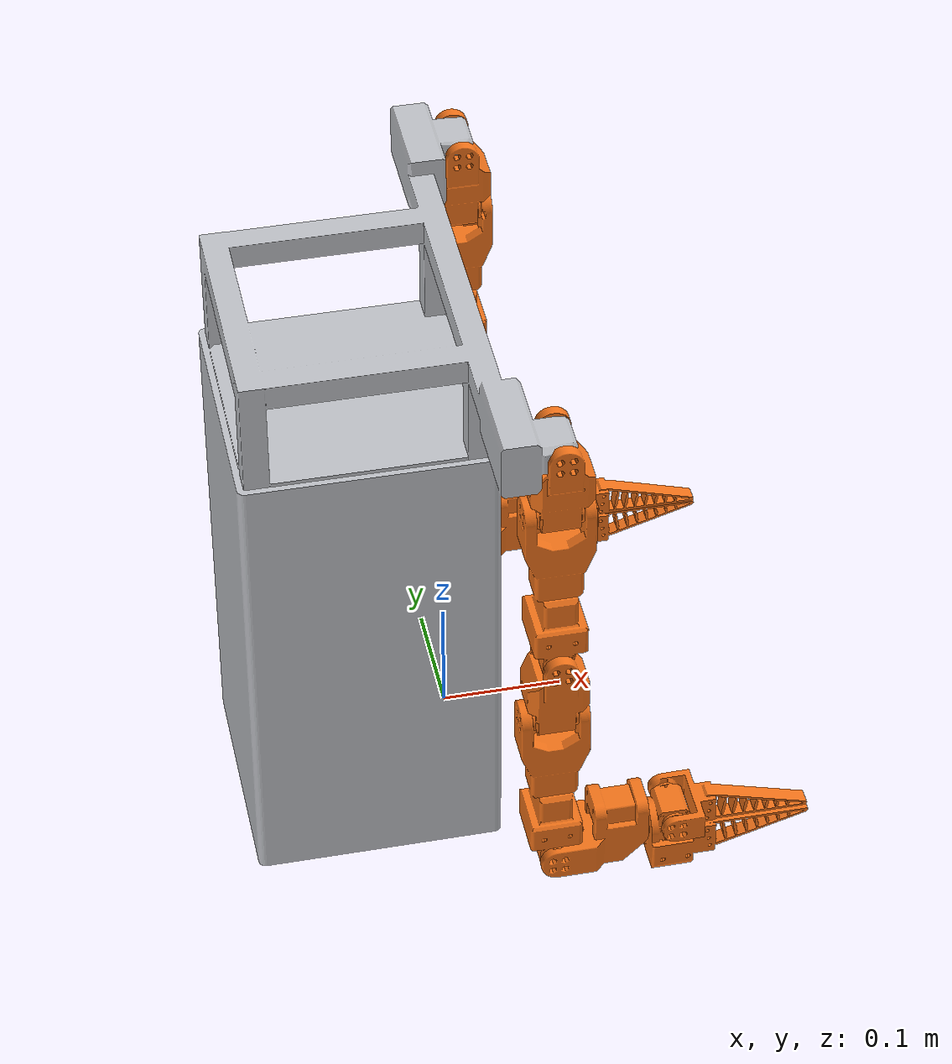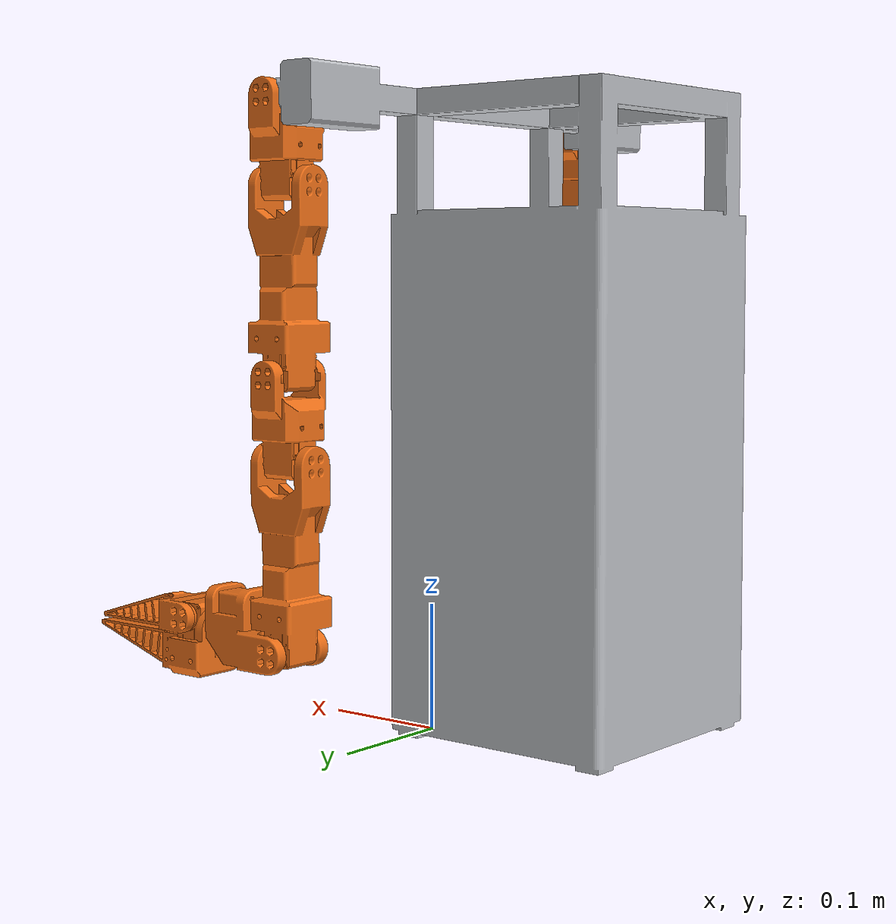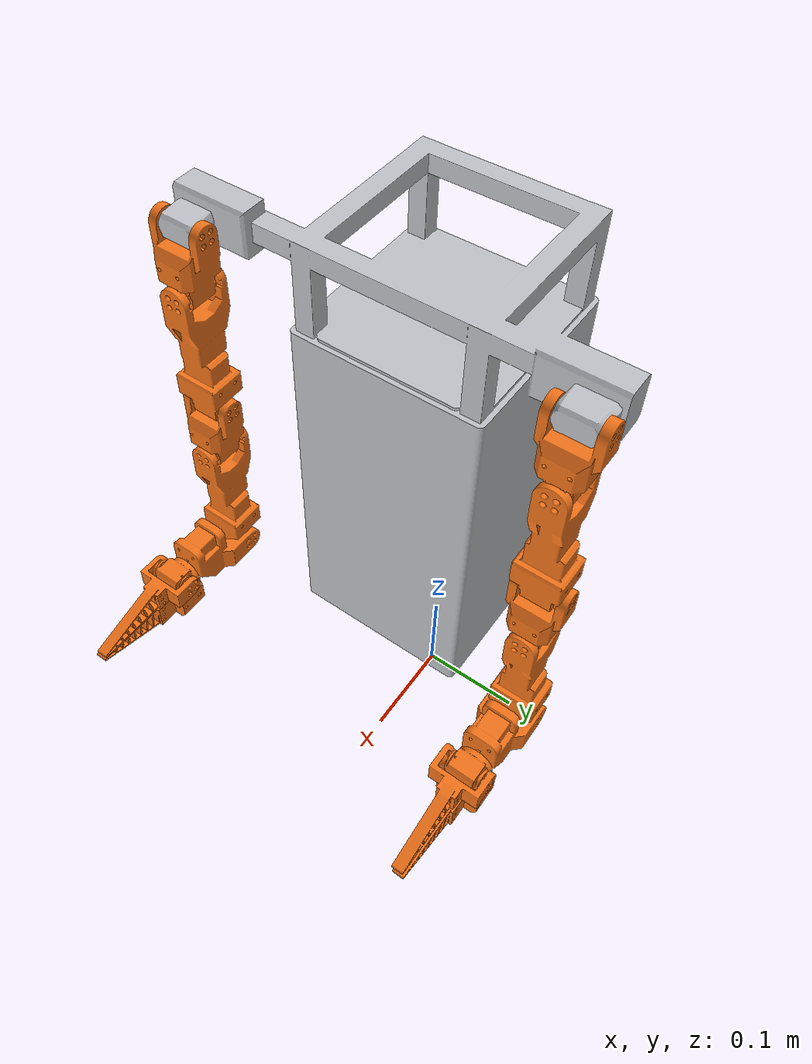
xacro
<?xml version="1.0"?>
<robot name="arm_body_v2" xmlns:xacro="http://www.ros.org/wiki/xacro">

  <!-- Links, joints, meshes, masses and inertias generated from Fusion -->
  <xacro:include filename="$(find arm_body_v2_description)/urdf/arm_body_v2_core.xacro"/>

  <!-- Self-collision (arm vs body, arm vs arm) in Gazebo. Off by default.
       Turn on with:  ros2 launch arm_body_v2_description gazebo.launch.py self_collide:=true -->
  <xacro:arg name="self_collide" default="false"/>
  <xacro:if value="$(arg self_collide)">
    <gazebo reference="body"><self_collide>true</self_collide></gazebo>
    <gazebo reference="l_link1"><self_collide>true</self_collide></gazebo>
    <gazebo reference="l_link2"><self_collide>true</self_collide></gazebo>
    <gazebo reference="l_link3"><self_collide>true</self_collide></gazebo>
    <gazebo reference="l_link4"><self_collide>true</self_collide></gazebo>
    <gazebo reference="l_link5"><self_collide>true</self_collide></gazebo>
    <gazebo reference="l_link6"><self_collide>true</self_collide></gazebo>
    <gazebo reference="l_finger"><self_collide>true</self_collide></gazebo>
    <gazebo reference="r_link1"><self_collide>true</self_collide></gazebo>
    <gazebo reference="r_link2"><self_collide>true</self_collide></gazebo>
    <gazebo reference="r_link3"><self_collide>true</self_collide></gazebo>
    <gazebo reference="r_link4"><self_collide>true</self_collide></gazebo>
    <gazebo reference="r_link5"><self_collide>true</self_collide></gazebo>
    <gazebo reference="r_link6"><self_collide>true</self_collide></gazebo>
    <gazebo reference="r_finger"><self_collide>true</self_collide></gazebo>
  </xacro:if>

  <!-- ros2_control: position-controlled joints, driven by Gazebo (gz_ros2_control) -->
  <ros2_control name="GazeboSimSystem" type="system">
    <hardware>
      <plugin>gz_ros2_control/GazeboSimSystem</plugin>
    </hardware>
    <joint name="l_joint1">
      <command_interface name="position">
        <param name="min">${l_joint1_lower}</param>
        <param name="max">${l_joint1_upper}</param>
      </command_interface>
      <state_interface name="position">
        <param name="initial_value">0.0</param>
      </state_interface>
      <state_interface name="velocity"/>
    </joint>
    <joint name="l_joint2">
      <command_interface name="position">
        <param name="min">${l_joint2_lower}</param>
        <param name="max">${l_joint2_upper}</param>
      </command_interface>
      <state_interface name="position">
        <param name="initial_value">0.0</param>
      </state_interface>
      <state_interface name="velocity"/>
    </joint>
    <joint name="l_joint3">
      <command_interface name="position">
        <param name="min">${l_joint3_lower}</param>
        <param name="max">${l_joint3_upper}</param>
      </command_interface>
      <state_interface name="position">
        <param name="initial_value">0.0</param>
      </state_interface>
      <state_interface name="velocity"/>
    </joint>
    <joint name="l_joint4">
      <command_interface name="position">
        <param name="min">${l_joint4_lower}</param>
        <param name="max">${l_joint4_upper}</param>
      </command_interface>
      <state_interface name="position">
        <param name="initial_value">0.0</param>
      </state_interface>
      <state_interface name="velocity"/>
    </joint>
    <joint name="l_joint5">
      <command_interface name="position">
        <param name="min">${l_joint5_lower}</param>
        <param name="max">${l_joint5_upper}</param>
      </command_interface>
      <state_interface name="position">
        <param name="initial_value">0.0</param>
      </state_interface>
      <state_interface name="velocity"/>
    </joint>
    <joint name="l_joint6">
      <command_interface name="position">
        <param name="min">${l_joint6_lower}</param>
        <param name="max">${l_joint6_upper}</param>
      </command_interface>
      <state_interface name="position">
        <param name="initial_value">0.0</param>
      </state_interface>
      <state_interface name="velocity"/>
    </joint>
    <joint name="l_joint7">
      <command_interface name="position">
        <param name="min">${l_joint7_lower}</param>
        <param name="max">${l_joint7_upper}</param>
      </command_interface>
      <state_interface name="position">
        <param name="initial_value">0.0</param>
      </state_interface>
      <state_interface name="velocity"/>
    </joint>
    <joint name="r_joint1">
      <command_interface name="position">
        <param name="min">${r_joint1_lower}</param>
        <param name="max">${r_joint1_upper}</param>
      </command_interface>
      <state_interface name="position">
        <param name="initial_value">0.0</param>
      </state_interface>
      <state_interface name="velocity"/>
    </joint>
    <joint name="r_joint2">
      <command_interface name="position">
        <param name="min">${r_joint2_lower}</param>
        <param name="max">${r_joint2_upper}</param>
      </command_interface>
      <state_interface name="position">
        <param name="initial_value">0.0</param>
      </state_interface>
      <state_interface name="velocity"/>
    </joint>
    <joint name="r_joint3">
      <command_interface name="position">
        <param name="min">${r_joint3_lower}</param>
        <param name="max">${r_joint3_upper}</param>
      </command_interface>
      <state_interface name="position">
        <param name="initial_value">0.0</param>
      </state_interface>
      <state_interface name="velocity"/>
    </joint>
    <joint name="r_joint4">
      <command_interface name="position">
        <param name="min">${r_joint4_lower}</param>
        <param name="max">${r_joint4_upper}</param>
      </command_interface>
      <state_interface name="position">
        <param name="initial_value">0.0</param>
      </state_interface>
      <state_interface name="velocity"/>
    </joint>
    <joint name="r_joint5">
      <command_interface name="position">
        <param name="min">${r_joint5_lower}</param>
        <param name="max">${r_joint5_upper}</param>
      </command_interface>
      <state_interface name="position">
        <param name="initial_value">0.0</param>
      </state_interface>
      <state_interface name="velocity"/>
    </joint>
    <joint name="r_joint6">
      <command_interface name="position">
        <param name="min">${r_joint6_lower}</param>
        <param name="max">${r_joint6_upper}</param>
      </command_interface>
      <state_interface name="position">
        <param name="initial_value">0.0</param>
      </state_interface>
      <state_interface name="velocity"/>
    </joint>
    <joint name="r_joint7">
      <command_interface name="position">
        <param name="min">${r_joint7_lower}</param>
        <param name="max">${r_joint7_upper}</param>
      </command_interface>
      <state_interface name="position">
        <param name="initial_value">0.0</param>
      </state_interface>
      <state_interface name="velocity"/>
    </joint>
  </ros2_control>

  <!-- Gazebo Harmonic: load the ros2_control plugin with our controller config -->
  <gazebo>
    <plugin filename="libgz_ros2_control-system.so" name="gz_ros2_control::GazeboSimROS2ControlPlugin">
      <parameters>$(find arm_body_v2_description)/config/controllers.yaml</parameters>
    </plugin>
  </gazebo>

</robot>

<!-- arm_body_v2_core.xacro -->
<robot name="arm_body_v2" xmlns:xacro="http://www.ros.org/wiki/xacro">
  <!-- Generated from Fusion design "Body + Arm v8". Units: metres, kilograms. -->
  <!-- Masses: printed parts PETG 15% infill (0.33 x 1.27 g/cm3), 2020 extrusions aluminium 6061,
       servos 74.5 g (STS3250). Inertias from Fusion geometry, rescaled to these materials. -->

  <!-- Joint limits (rad). Fusion has no limits set, so these default to the full servo travel
       around the rest pose. Tighten them to the real mechanical range. -->
  <xacro:property name="l_joint1_lower" value="-3.1416"/>
  <xacro:property name="l_joint1_upper" value="3.1416"/>
  <xacro:property name="l_joint2_lower" value="-3.1416"/>
  <xacro:property name="l_joint2_upper" value="3.1416"/>
  <xacro:property name="l_joint3_lower" value="-3.1416"/>
  <xacro:property name="l_joint3_upper" value="3.1416"/>
  <xacro:property name="l_joint4_lower" value="-3.1416"/>
  <xacro:property name="l_joint4_upper" value="3.1416"/>
  <xacro:property name="l_joint5_lower" value="-3.1416"/>
  <xacro:property name="l_joint5_upper" value="3.1416"/>
  <xacro:property name="l_joint6_lower" value="-3.1416"/>
  <xacro:property name="l_joint6_upper" value="3.1416"/>
  <xacro:property name="l_joint7_lower" value="-3.1416"/>
  <xacro:property name="l_joint7_upper" value="3.1416"/>
  <xacro:property name="r_joint1_lower" value="-3.1416"/>
  <xacro:property name="r_joint1_upper" value="3.1416"/>
  <xacro:property name="r_joint2_lower" value="-3.1416"/>
  <xacro:property name="r_joint2_upper" value="3.1416"/>
  <xacro:property name="r_joint3_lower" value="-3.1416"/>
  <xacro:property name="r_joint3_upper" value="3.1416"/>
  <xacro:property name="r_joint4_lower" value="-3.1416"/>
  <xacro:property name="r_joint4_upper" value="3.1416"/>
  <xacro:property name="r_joint5_lower" value="-3.1416"/>
  <xacro:property name="r_joint5_upper" value="3.1416"/>
  <xacro:property name="r_joint6_lower" value="-3.1416"/>
  <xacro:property name="r_joint6_upper" value="3.1416"/>
  <xacro:property name="r_joint7_lower" value="-3.1416"/>
  <xacro:property name="r_joint7_upper" value="3.1416"/>
  <xacro:property name="servo_effort" value="4.9"/>    <!-- STS3250 stall torque, N*m -->
  <xacro:property name="servo_velocity" value="7.85"/> <!-- rad/s -->

  <material name="petg_orange"><color rgba="0.95 0.45 0.10 1"/></material>
  <material name="aluminium"><color rgba="0.75 0.76 0.78 1"/></material>
  <link name="world"/>
  <joint name="world_to_body" type="fixed">
    <parent link="world"/>
    <child link="body"/>
    <origin xyz="0 0 -0.229871" rpy="0 0 0"/>
  </joint>
  <link name="body">
    <inertial>
      <origin xyz="-0.065542 -0.065485 0.528216" rpy="0 0 0"/>
      <mass value="1.969296"/>
      <inertia ixx="6.9145e-02" ixy="-2.1153e-05" ixz="-3.7645e-03" iyy="6.2288e-02" iyz="-3.2409e-05" izz="3.1000e-02"/>
    </inertial>
    <visual>
      <origin xyz="0 0 0" rpy="0 0 0"/>
      <geometry><mesh filename="package://arm_body_v2_description/meshes/body.stl" scale="0.001 0.001 0.001"/></geometry>
      <material name="aluminium"/>
    </visual>
    <collision>
      <origin xyz="0 0 0" rpy="0 0 0"/>
      <geometry><mesh filename="package://arm_body_v2_description/meshes/collision/body.stl" scale="0.001 0.001 0.001"/></geometry>
    </collision>
  </link>
  <link name="l_link1">
    <inertial>
      <origin xyz="-0.000081 -0.017299 -0.045926" rpy="0 0 0"/>
      <mass value="0.096732"/>
      <inertia ixx="3.9581e-05" ixy="8.2644e-10" ixz="-4.7817e-07" iyy="4.0490e-05" iyz="4.1812e-08" izz="1.9835e-05"/>
    </inertial>
    <visual>
      <origin xyz="-0.0382 0.234279 -0.719471" rpy="0 0 0"/>
      <geometry><mesh filename="package://arm_body_v2_description/meshes/l_link1.stl" scale="0.001 0.001 0.001"/></geometry>
      <material name="petg_orange"/>
    </visual>
    <collision>
      <origin xyz="-0.0382 0.234279 -0.719471" rpy="0 0 0"/>
      <geometry><mesh filename="package://arm_body_v2_description/meshes/collision/l_link1.stl" scale="0.001 0.001 0.001"/></geometry>
    </collision>
  </link>
  <link name="l_link2">
    <inertial>
      <origin xyz="0.016458 -0.000128 -0.103893" rpy="0 0 0"/>
      <mass value="0.117687"/>
      <inertia ixx="2.1309e-04" ixy="-7.7217e-09" ixz="1.6375e-07" iyy="2.1412e-04" iyz="-5.5021e-07" izz="2.6510e-05"/>
    </inertial>
    <visual>
      <origin xyz="-0.0207 0.251579 -0.654271" rpy="0 0 0"/>
      <geometry><mesh filename="package://arm_body_v2_description/meshes/l_link2.stl" scale="0.001 0.001 0.001"/></geometry>
      <material name="petg_orange"/>
    </visual>
    <collision>
      <origin xyz="-0.0207 0.251579 -0.654271" rpy="0 0 0"/>
      <geometry><mesh filename="package://arm_body_v2_description/meshes/collision/l_link2.stl" scale="0.001 0.001 0.001"/></geometry>
    </collision>
  </link>
  <link name="l_link3">
    <inertial>
      <origin xyz="-0.000466 0.016619 -0.045924" rpy="0 0 0"/>
      <mass value="0.096732"/>
      <inertia ixx="3.9452e-05" ixy="-2.8700e-09" ixz="-7.1137e-07" iyy="4.0408e-05" iyz="-3.1641e-11" izz="1.9824e-05"/>
    </inertial>
    <visual>
      <origin xyz="-0.03715 0.2691 -0.513071" rpy="0 0 0"/>
      <geometry><mesh filename="package://arm_body_v2_description/meshes/l_link3.stl" scale="0.001 0.001 0.001"/></geometry>
      <material name="petg_orange"/>
    </visual>
    <collision>
      <origin xyz="-0.03715 0.2691 -0.513071" rpy="0 0 0"/>
      <geometry><mesh filename="package://arm_body_v2_description/meshes/collision/l_link3.stl" scale="0.001 0.001 0.001"/></geometry>
    </collision>
  </link>
  <link name="l_link4">
    <inertial>
      <origin xyz="-0.016661 0.00042 -0.103842" rpy="0 0 0"/>
      <mass value="0.117687"/>
      <inertia ixx="2.1318e-04" ixy="-2.8284e-08" ixz="2.9890e-06" iyy="2.1426e-04" iyz="1.2039e-06" izz="2.6576e-05"/>
    </inertial>
    <visual>
      <origin xyz="-0.05325 0.252475 -0.447872" rpy="0 0 0"/>
      <geometry><mesh filename="package://arm_body_v2_description/meshes/l_link4.stl" scale="0.001 0.001 0.001"/></geometry>
      <material name="petg_orange"/>
    </visual>
    <collision>
      <origin xyz="-0.05325 0.252475 -0.447872" rpy="0 0 0"/>
      <geometry><mesh filename="package://arm_body_v2_description/meshes/collision/l_link4.stl" scale="0.001 0.001 0.001"/></geometry>
    </collision>
  </link>
  <link name="l_link5">
    <inertial>
      <origin xyz="0.048189 -0.017124 0.015363" rpy="0 0 0"/>
      <mass value="0.098560"/>
      <inertia ixx="3.0343e-05" ixy="2.2154e-07" ixz="-6.9574e-06" iyy="4.4400e-05" iyz="6.0241e-08" izz="3.5331e-05"/>
    </inertial>
    <visual>
      <origin xyz="-0.03715 0.235 -0.306724" rpy="0 0 0"/>
      <geometry><mesh filename="package://arm_body_v2_description/meshes/l_link5.stl" scale="0.001 0.001 0.001"/></geometry>
      <material name="petg_orange"/>
    </visual>
    <collision>
      <origin xyz="-0.03715 0.235 -0.306724" rpy="0 0 0"/>
      <geometry><mesh filename="package://arm_body_v2_description/meshes/collision/l_link5.stl" scale="0.001 0.001 0.001"/></geometry>
    </collision>
  </link>
  <link name="l_link6">
    <inertial>
      <origin xyz="0.026941 0.000093 -0.003054" rpy="0 0 0"/>
      <mass value="0.093425"/>
      <inertia ixx="2.8329e-05" ixy="2.3020e-07" ixz="2.9458e-06" iyy="3.9335e-05" iyz="-2.2407e-07" izz="2.9675e-05"/>
    </inertial>
    <visual>
      <origin xyz="-0.1072 0.252199 -0.311674" rpy="0 0 0"/>
      <geometry><mesh filename="package://arm_body_v2_description/meshes/l_link6.stl" scale="0.001 0.001 0.001"/></geometry>
      <material name="petg_orange"/>
    </visual>
    <collision>
      <origin xyz="-0.1072 0.252199 -0.311674" rpy="0 0 0"/>
      <geometry><mesh filename="package://arm_body_v2_description/meshes/collision/l_link6.stl" scale="0.001 0.001 0.001"/></geometry>
    </collision>
  </link>
  <link name="l_finger">
    <inertial>
      <origin xyz="0.028467 0.017653 -0.001186" rpy="0 0 0"/>
      <mass value="0.010447"/>
      <inertia ixx="2.9184e-06" ixy="-1.4031e-08" ixz="6.8506e-07" iyy="7.3735e-06" iyz="2.0008e-09" izz="9.1900e-06"/>
    </inertial>
    <visual>
      <origin xyz="-0.131925 0.269099 -0.324674" rpy="0 0 0"/>
      <geometry><mesh filename="package://arm_body_v2_description/meshes/l_finger.stl" scale="0.001 0.001 0.001"/></geometry>
      <material name="petg_orange"/>
    </visual>
    <collision>
      <origin xyz="-0.131925 0.269099 -0.324674" rpy="0 0 0"/>
      <geometry><mesh filename="package://arm_body_v2_description/meshes/collision/l_finger.stl" scale="0.001 0.001 0.001"/></geometry>
    </collision>
  </link>
  <link name="r_link1">
    <inertial>
      <origin xyz="-0.00008 0.0173 -0.045923" rpy="0 0 0"/>
      <mass value="0.096732"/>
      <inertia ixx="3.9367e-05" ixy="1.2795e-09" ixz="-4.6651e-07" iyy="4.0283e-05" iyz="-4.5634e-09" izz="1.9828e-05"/>
    </inertial>
    <visual>
      <origin xyz="-0.0382 -0.103821 -0.719471" rpy="0 0 0"/>
      <geometry><mesh filename="package://arm_body_v2_description/meshes/r_link1.stl" scale="0.001 0.001 0.001"/></geometry>
      <material name="petg_orange"/>
    </visual>
    <collision>
      <origin xyz="-0.0382 -0.103821 -0.719471" rpy="0 0 0"/>
      <geometry><mesh filename="package://arm_body_v2_description/meshes/collision/r_link1.stl" scale="0.001 0.001 0.001"/></geometry>
    </collision>
  </link>
  <link name="r_link2">
    <inertial>
      <origin xyz="0.016458 0.000128 -0.103893" rpy="0 0 0"/>
      <mass value="0.117687"/>
      <inertia ixx="2.1311e-04" ixy="5.5031e-09" ixz="1.6373e-07" iyy="2.1412e-04" iyz="5.1736e-07" izz="2.6533e-05"/>
    </inertial>
    <visual>
      <origin xyz="-0.0207 -0.12112 -0.654271" rpy="0 0 0"/>
      <geometry><mesh filename="package://arm_body_v2_description/meshes/r_link2.stl" scale="0.001 0.001 0.001"/></geometry>
      <material name="petg_orange"/>
    </visual>
    <collision>
      <origin xyz="-0.0207 -0.12112 -0.654271" rpy="0 0 0"/>
      <geometry><mesh filename="package://arm_body_v2_description/meshes/collision/r_link2.stl" scale="0.001 0.001 0.001"/></geometry>
    </collision>
  </link>
  <link name="r_link3">
    <inertial>
      <origin xyz="-0.000466 0.01748 -0.045924" rpy="0 0 0"/>
      <mass value="0.096732"/>
      <inertia ixx="3.9474e-05" ixy="6.8019e-10" ixz="-7.1137e-07" iyy="4.0408e-05" iyz="-2.7854e-08" izz="1.9847e-05"/>
    </inertial>
    <visual>
      <origin xyz="-0.03715 -0.104542 -0.513071" rpy="0 0 0"/>
      <geometry><mesh filename="package://arm_body_v2_description/meshes/r_link3.stl" scale="0.001 0.001 0.001"/></geometry>
      <material name="petg_orange"/>
    </visual>
    <collision>
      <origin xyz="-0.03715 -0.104542 -0.513071" rpy="0 0 0"/>
      <geometry><mesh filename="package://arm_body_v2_description/meshes/collision/r_link3.stl" scale="0.001 0.001 0.001"/></geometry>
    </collision>
  </link>
  <link name="r_link4">
    <inertial>
      <origin xyz="-0.016661 -0.00042 -0.103842" rpy="0 0 0"/>
      <mass value="0.117687"/>
      <inertia ixx="2.1320e-04" ixy="2.6099e-08" ixz="2.9890e-06" iyy="2.1426e-04" iyz="-1.2244e-06" izz="2.6598e-05"/>
    </inertial>
    <visual>
      <origin xyz="-0.05325 -0.122016 -0.447872" rpy="0 0 0"/>
      <geometry><mesh filename="package://arm_body_v2_description/meshes/r_link4.stl" scale="0.001 0.001 0.001"/></geometry>
      <material name="petg_orange"/>
    </visual>
    <collision>
      <origin xyz="-0.05325 -0.122016 -0.447872" rpy="0 0 0"/>
      <geometry><mesh filename="package://arm_body_v2_description/meshes/collision/r_link4.stl" scale="0.001 0.001 0.001"/></geometry>
    </collision>
  </link>
  <link name="r_link5">
    <inertial>
      <origin xyz="0.048189 0.017123 0.015363" rpy="0 0 0"/>
      <mass value="0.098560"/>
      <inertia ixx="3.0366e-05" ixy="-2.2652e-07" ixz="-6.9576e-06" iyy="4.4400e-05" iyz="-7.9431e-08" izz="3.5354e-05"/>
    </inertial>
    <visual>
      <origin xyz="-0.03715 -0.104542 -0.306724" rpy="0 0 0"/>
      <geometry><mesh filename="package://arm_body_v2_description/meshes/r_link5.stl" scale="0.001 0.001 0.001"/></geometry>
      <material name="petg_orange"/>
    </visual>
    <collision>
      <origin xyz="-0.03715 -0.104542 -0.306724" rpy="0 0 0"/>
      <geometry><mesh filename="package://arm_body_v2_description/meshes/collision/r_link5.stl" scale="0.001 0.001 0.001"/></geometry>
    </collision>
  </link>
  <link name="r_link6">
    <inertial>
      <origin xyz="0.026941 -0.000093 -0.003054" rpy="0 0 0"/>
      <mass value="0.093425"/>
      <inertia ixx="2.8352e-05" ixy="-2.3820e-07" ixz="2.9458e-06" iyy="3.9335e-05" iyz="2.0565e-07" izz="2.9697e-05"/>
    </inertial>
    <visual>
      <origin xyz="-0.1072 -0.12174 -0.311674" rpy="0 0 0"/>
      <geometry><mesh filename="package://arm_body_v2_description/meshes/r_link6.stl" scale="0.001 0.001 0.001"/></geometry>
      <material name="petg_orange"/>
    </visual>
    <collision>
      <origin xyz="-0.1072 -0.12174 -0.311674" rpy="0 0 0"/>
      <geometry><mesh filename="package://arm_body_v2_description/meshes/collision/r_link6.stl" scale="0.001 0.001 0.001"/></geometry>
    </collision>
  </link>
  <link name="r_finger">
    <inertial>
      <origin xyz="0.028467 -0.017653 -0.001186" rpy="0 0 0"/>
      <mass value="0.010447"/>
      <inertia ixx="2.9184e-06" ixy="1.4030e-08" ixz="6.8506e-07" iyy="7.3735e-06" iyz="-2.0012e-09" izz="9.1900e-06"/>
    </inertial>
    <visual>
      <origin xyz="-0.131925 -0.13864 -0.324674" rpy="0 0 0"/>
      <geometry><mesh filename="package://arm_body_v2_description/meshes/r_finger.stl" scale="0.001 0.001 0.001"/></geometry>
      <material name="petg_orange"/>
    </visual>
    <collision>
      <origin xyz="-0.131925 -0.13864 -0.324674" rpy="0 0 0"/>
      <geometry><mesh filename="package://arm_body_v2_description/meshes/collision/r_finger.stl" scale="0.001 0.001 0.001"/></geometry>
    </collision>
  </link>
  <joint name="l_joint1" type="revolute">
    <parent link="body"/>
    <child link="l_link1"/>
    <origin xyz="0.0382 -0.234279 0.719471" rpy="0 0 0"/>
    <axis xyz="0 1 0"/>
    <limit lower="${l_joint1_lower}" upper="${l_joint1_upper}" effort="${servo_effort}" velocity="${servo_velocity}"/>
    <dynamics damping="0.1" friction="0.05"/>
  </joint>
  <joint name="l_joint2" type="revolute">
    <parent link="l_link1"/>
    <child link="l_link2"/>
    <origin xyz="-0.0175 -0.0173 -0.0652" rpy="0 0 0"/>
    <axis xyz="1 0 0"/>
    <limit lower="${l_joint2_lower}" upper="${l_joint2_upper}" effort="${servo_effort}" velocity="${servo_velocity}"/>
    <dynamics damping="0.1" friction="0.05"/>
  </joint>
  <joint name="l_joint3" type="revolute">
    <parent link="l_link2"/>
    <child link="l_link3"/>
    <origin xyz="0.01645 -0.017521 -0.1412" rpy="0 0 0"/>
    <axis xyz="0 1 0"/>
    <limit lower="${l_joint3_lower}" upper="${l_joint3_upper}" effort="${servo_effort}" velocity="${servo_velocity}"/>
    <dynamics damping="0.1" friction="0.05"/>
  </joint>
  <joint name="l_joint4" type="revolute">
    <parent link="l_link3"/>
    <child link="l_link4"/>
    <origin xyz="0.0161 0.016625 -0.0652" rpy="0 0 0"/>
    <axis xyz="1 0 0"/>
    <limit lower="${l_joint4_lower}" upper="${l_joint4_upper}" effort="${servo_effort}" velocity="${servo_velocity}"/>
    <dynamics damping="0.1" friction="0.05"/>
  </joint>
  <joint name="l_joint5" type="revolute">
    <parent link="l_link4"/>
    <child link="l_link5"/>
    <origin xyz="-0.0161 0.017475 -0.141147" rpy="0 0 0"/>
    <axis xyz="0 1 0"/>
    <limit lower="${l_joint5_lower}" upper="${l_joint5_upper}" effort="${servo_effort}" velocity="${servo_velocity}"/>
    <dynamics damping="0.1" friction="0.05"/>
  </joint>
  <joint name="l_joint6" type="revolute">
    <parent link="l_link5"/>
    <child link="l_link6"/>
    <origin xyz="0.07005 -0.017198 0.00495" rpy="0 0 0"/>
    <axis xyz="1 0 0"/>
    <limit lower="${l_joint6_lower}" upper="${l_joint6_upper}" effort="${servo_effort}" velocity="${servo_velocity}"/>
    <dynamics damping="0.1" friction="0.05"/>
  </joint>
  <joint name="l_joint7" type="revolute">
    <parent link="l_link6"/>
    <child link="l_finger"/>
    <origin xyz="0.024725 -0.0169 0.013" rpy="0 0 0"/>
    <axis xyz="0 1 0"/>
    <limit lower="${l_joint7_lower}" upper="${l_joint7_upper}" effort="${servo_effort}" velocity="${servo_velocity}"/>
    <dynamics damping="0.1" friction="0.05"/>
  </joint>
  <joint name="r_joint1" type="revolute">
    <parent link="body"/>
    <child link="r_link1"/>
    <origin xyz="0.0382 0.103821 0.719471" rpy="0 0 0"/>
    <axis xyz="0 1 0"/>
    <limit lower="${r_joint1_lower}" upper="${r_joint1_upper}" effort="${servo_effort}" velocity="${servo_velocity}"/>
    <dynamics damping="0.1" friction="0.05"/>
  </joint>
  <joint name="r_joint2" type="revolute">
    <parent link="r_link1"/>
    <child link="r_link2"/>
    <origin xyz="-0.0175 0.0173 -0.0652" rpy="0 0 0"/>
    <axis xyz="-1 0 0"/>
    <limit lower="${r_joint2_lower}" upper="${r_joint2_upper}" effort="${servo_effort}" velocity="${servo_velocity}"/>
    <dynamics damping="0.1" friction="0.05"/>
  </joint>
  <joint name="r_joint3" type="revolute">
    <parent link="r_link2"/>
    <child link="r_link3"/>
    <origin xyz="0.01645 -0.016579 -0.1412" rpy="0 0 0"/>
    <axis xyz="0 1 0"/>
    <limit lower="${r_joint3_lower}" upper="${r_joint3_upper}" effort="${servo_effort}" velocity="${servo_velocity}"/>
    <dynamics damping="0.1" friction="0.05"/>
  </joint>
  <joint name="r_joint4" type="revolute">
    <parent link="r_link3"/>
    <child link="r_link4"/>
    <origin xyz="0.0161 0.017475 -0.0652" rpy="0 0 0"/>
    <axis xyz="-1 0 0"/>
    <limit lower="${r_joint4_lower}" upper="${r_joint4_upper}" effort="${servo_effort}" velocity="${servo_velocity}"/>
    <dynamics damping="0.1" friction="0.05"/>
  </joint>
  <joint name="r_joint5" type="revolute">
    <parent link="r_link4"/>
    <child link="r_link5"/>
    <origin xyz="-0.0161 -0.017475 -0.141147" rpy="0 0 0"/>
    <axis xyz="0 1 0"/>
    <limit lower="${r_joint5_lower}" upper="${r_joint5_upper}" effort="${servo_effort}" velocity="${servo_velocity}"/>
    <dynamics damping="0.1" friction="0.05"/>
  </joint>
  <joint name="r_joint6" type="revolute">
    <parent link="r_link5"/>
    <child link="r_link6"/>
    <origin xyz="0.07005 0.017198 0.00495" rpy="0 0 0"/>
    <axis xyz="-1 0 0"/>
    <limit lower="${r_joint6_lower}" upper="${r_joint6_upper}" effort="${servo_effort}" velocity="${servo_velocity}"/>
    <dynamics damping="0.1" friction="0.05"/>
  </joint>
  <joint name="r_joint7" type="revolute">
    <parent link="r_link6"/>
    <child link="r_finger"/>
    <origin xyz="0.024725 0.0169 0.013" rpy="0 0 0"/>
    <axis xyz="0 1 0"/>
    <limit lower="${r_joint7_lower}" upper="${r_joint7_upper}" effort="${servo_effort}" velocity="${servo_velocity}"/>
    <dynamics damping="0.1" friction="0.05"/>
  </joint>
</robot>
